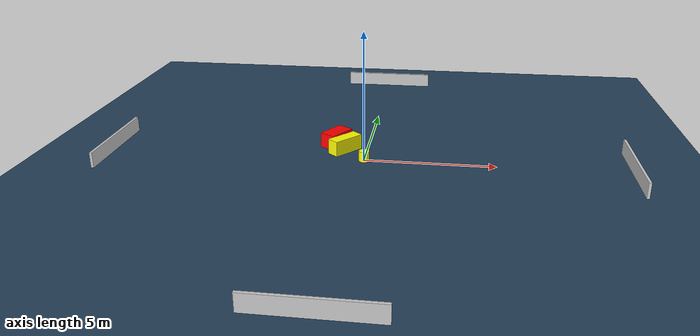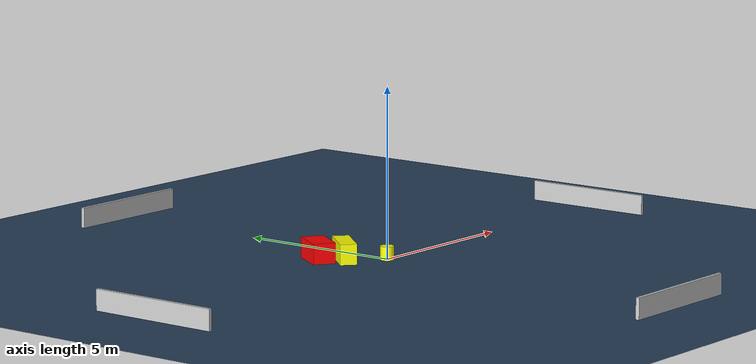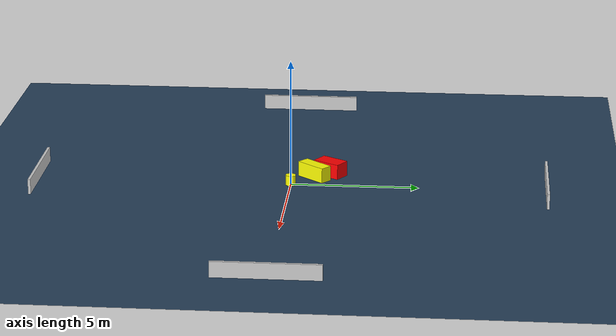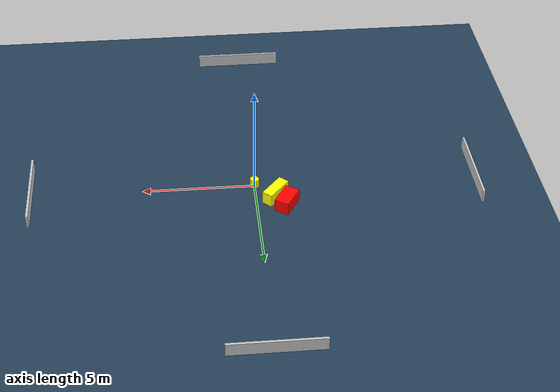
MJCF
<?xml version="1.0" ?>
<mujoco model="generated_environment">
  <option timestep="0.01" integrator="RK4" cone="elliptic"/>
  <default>
    <geom density="1"/>
  </default>
  <asset>
    <texture builtin="gradient" height="3072" name="skybox" rgb1="0.3 0.5 0.7" rgb2="0 0 0" type="skybox" width="512"/>
    <texture builtin="checker" height="300" name="groundplane" rgb1="0.2 0.3 0.4" rgb2="0.1 0.2 0.3" type="2d" width="300"/>
    <material name="groundplane" reflectance="0.2" texrepeat="5 5" texture="groundplane"/>
  </asset>
  <worldbody>
    <light dir="0 0 -1" directional="true" pos="0 0 1.5"/>
    <geom condim="3" friction="0.5 0.005 0.001" material="groundplane" name="floor" pos="0 0 0" size="0 0 0.05" type="plane"/>
    <body name="walls">
      <geom name="wall_1" condim="4" pos="-10.0 0.0 0.3" rgba="0.800000011920929 0.800000011920929 0.800000011920929 1.0" size="0.05 2.0 0.3" type="box"/>
      <geom name="wall_2" condim="4" pos="10.0 0.0 0.3" rgba="0.800000011920929 0.800000011920929 0.800000011920929 1.0" size="0.05 2.0 0.3" type="box"/>
      <geom name="wall_3" condim="4" pos="0.0 -10.0 0.3" rgba="0.800000011920929 0.800000011920929 0.800000011920929 1.0" size="2.0 0.05 0.3" type="box"/>
      <geom name="wall_4" condim="4" pos="0.0 10.0 0.3" rgba="0.800000011920929 0.800000011920929 0.800000011920929 1.0" size="2.0 0.05 0.3" type="box"/>
    </body>
    <body name="robot">
      <joint name="joint_x" type="slide" pos="0 0 0" axis="1 0 0"/>
      <joint name="joint_y" type="slide" pos="0 0 0" axis="0 1 0"/>
      <geom name="robot" type="cylinder" pos="0.0 0.0 0.2" size="0.2 0.2 0.0" mass="5.0" friction="1.0 0.005 0.0001" condim="4" rgba="1.0 1.0 0.0 1.0"/>
    </body>
    <body name="obstacle_1_movable">
      <geom name="obstacle_1_movable" condim="4" pos="-0.8637646103982568 0.871256833133711 0.3" euler="0 0 229.20958677288962" friction="0.0 0.005 0.001" rgba="1.0 1.0 0.0 1.0" size="0.6488164804575945 0.24444358482602982 0.3" type="box" mass="0.1"/>
      <joint type="free"/>
    </body>
    <body name="obstacle_2_static">
      <geom name="obstacle_2_static" condim="4" pos="-1.3074510665216312 1.4809110962642622 0.3" euler="0 0 327.8709094209302" friction="0.0 0.005 0.001" rgba="1.0 0.0 0.0 1.0" size="0.33550908908873067 0.5659518523923086 0.3" type="box"/>
    </body>
  </worldbody>
  <actuator>
    <motor name="actuator_x" joint="joint_x" gear="1" ctrlrange="-1 1"/>
    <motor name="actuator_y" joint="joint_y" gear="1" ctrlrange="-1 1"/>
  </actuator>
</mujoco>
